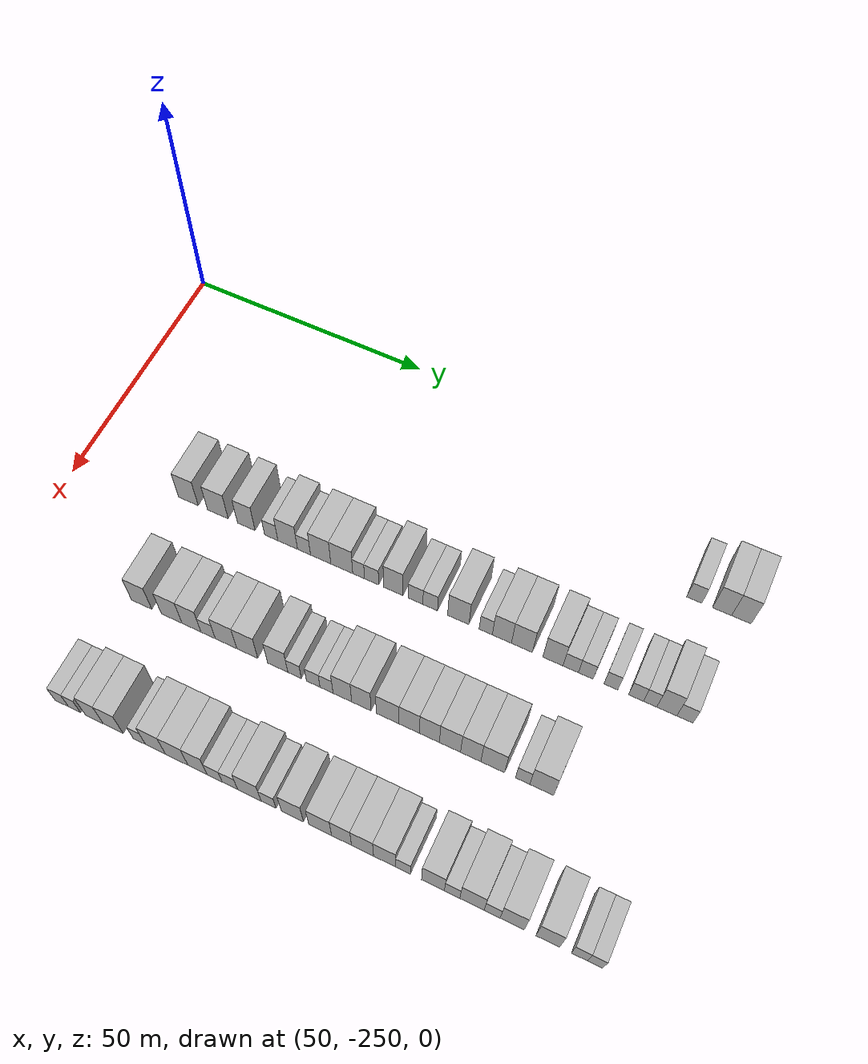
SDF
<sdf version="1.6">
 <world name="default">
  <model name="building_438">
   <static>1</static>
   <pose>69.0000 -133.8585 0 0.000000 0.000000 0.000000</pose>
   <link name="link">
    <pose>0 0 3.00 0 0 0</pose>
    <collision name="collision"><geometry><box><size>10.0000 2.8949 6.0000</size></box></geometry></collision>
    <visual name="visual">
     <cast_shadows>0</cast_shadows>
     <geometry><box><size>10.0000 2.8949 6.0000</size></box></geometry>
     <material>
      <script>
       <uri>model://HANNAS_wall/materials/scripts</uri>
       <uri>model://HANNAS_wall/materials/textures</uri>
       <name>vrc/HANNAS_wall</name>
      </script>
     </material>
    </visual>
   </link>
  </model>
  <model name="building_439">
   <static>1</static>
   <pose>69.0000 -128.6064 0 0.000000 0.000000 0.000000</pose>
   <link name="link">
    <pose>0 0 4.50 0 0 0</pose>
    <collision name="collision"><geometry><box><size>10.0000 3.6094 9.0000</size></box></geometry></collision>
    <visual name="visual">
     <cast_shadows>0</cast_shadows>
     <geometry><box><size>10.0000 3.6094 9.0000</size></box></geometry>
     <material>
      <script>
       <uri>model://HANNAS_wall/materials/scripts</uri>
       <uri>model://HANNAS_wall/materials/textures</uri>
       <name>vrc/HANNAS_wall</name>
      </script>
     </material>
    </visual>
   </link>
  </model>
  <model name="building_440">
   <static>1</static>
   <pose>69.0000 -124.9648 0 0.000000 0.000000 0.000000</pose>
   <link name="link">
    <pose>0 0 4.50 0 0 0</pose>
    <collision name="collision"><geometry><box><size>10.0000 3.6738 9.0000</size></box></geometry></collision>
    <visual name="visual">
     <cast_shadows>0</cast_shadows>
     <geometry><box><size>10.0000 3.6738 9.0000</size></box></geometry>
     <material>
      <script>
       <uri>model://HANNAS_wall/materials/scripts</uri>
       <uri>model://HANNAS_wall/materials/textures</uri>
       <name>vrc/HANNAS_wall</name>
      </script>
     </material>
    </visual>
   </link>
  </model>
  <model name="building_606">
   <static>1</static>
   <pose>91.0000 -226.7103 0 0.000000 0.000000 0.000000</pose>
   <link name="link">
    <pose>0 0 4.50 0 0 0</pose>
    <collision name="collision"><geometry><box><size>10.0000 4.2641 9.0000</size></box></geometry></collision>
    <visual name="visual">
     <cast_shadows>0</cast_shadows>
     <geometry><box><size>10.0000 4.2641 9.0000</size></box></geometry>
     <material>
      <script>
       <uri>model://HANNAS_wall/materials/scripts</uri>
       <uri>model://HANNAS_wall/materials/textures</uri>
       <name>vrc/HANNAS_wall</name>
      </script>
     </material>
    </visual>
   </link>
  </model>
  <model name="building_607">
   <static>1</static>
   <pose>91.0000 -220.3529 0 0.000000 0.000000 0.000000</pose>
   <link name="link">
    <pose>0 0 4.50 0 0 0</pose>
    <collision name="collision"><geometry><box><size>10.0000 4.4506 9.0000</size></box></geometry></collision>
    <visual name="visual">
     <cast_shadows>0</cast_shadows>
     <geometry><box><size>10.0000 4.4506 9.0000</size></box></geometry>
     <material>
      <script>
       <uri>model://HANNAS_wall/materials/scripts</uri>
       <uri>model://HANNAS_wall/materials/textures</uri>
       <name>vrc/HANNAS_wall</name>
      </script>
     </material>
    </visual>
   </link>
  </model>
  <model name="building_608">
   <static>1</static>
   <pose>91.0000 -214.2517 0 0.000000 0.000000 0.000000</pose>
   <link name="link">
    <pose>0 0 4.50 0 0 0</pose>
    <collision name="collision"><geometry><box><size>10.0000 3.7518 9.0000</size></box></geometry></collision>
    <visual name="visual">
     <cast_shadows>0</cast_shadows>
     <geometry><box><size>10.0000 3.7518 9.0000</size></box></geometry>
     <material>
      <script>
       <uri>model://HANNAS_wall/materials/scripts</uri>
       <uri>model://HANNAS_wall/materials/textures</uri>
       <name>vrc/HANNAS_wall</name>
      </script>
     </material>
    </visual>
   </link>
  </model>
  <model name="building_609">
   <static>1</static>
   <pose>91.0000 -208.9661 0 0.000000 0.000000 0.000000</pose>
   <link name="link">
    <pose>0 0 3.00 0 0 0</pose>
    <collision name="collision"><geometry><box><size>10.0000 2.8195 6.0000</size></box></geometry></collision>
    <visual name="visual">
     <cast_shadows>0</cast_shadows>
     <geometry><box><size>10.0000 2.8195 6.0000</size></box></geometry>
     <material>
      <script>
       <uri>model://HANNAS_wall/materials/scripts</uri>
       <uri>model://HANNAS_wall/materials/textures</uri>
       <name>vrc/HANNAS_wall</name>
      </script>
     </material>
    </visual>
   </link>
  </model>
  <model name="building_610">
   <static>1</static>
   <pose>91.0000 -205.5029 0 0.000000 0.000000 0.000000</pose>
   <link name="link">
    <pose>0 0 4.50 0 0 0</pose>
    <collision name="collision"><geometry><box><size>10.0000 4.1069 9.0000</size></box></geometry></collision>
    <visual name="visual">
     <cast_shadows>0</cast_shadows>
     <geometry><box><size>10.0000 4.1069 9.0000</size></box></geometry>
     <material>
      <script>
       <uri>model://HANNAS_wall/materials/scripts</uri>
       <uri>model://HANNAS_wall/materials/textures</uri>
       <name>vrc/HANNAS_wall</name>
      </script>
     </material>
    </visual>
   </link>
  </model>
  <model name="building_611">
   <static>1</static>
   <pose>91.0000 -202.0867 0 0.000000 0.000000 0.000000</pose>
   <link name="link">
    <pose>0 0 3.00 0 0 0</pose>
    <collision name="collision"><geometry><box><size>10.0000 2.7254 6.0000</size></box></geometry></collision>
    <visual name="visual">
     <cast_shadows>0</cast_shadows>
     <geometry><box><size>10.0000 2.7254 6.0000</size></box></geometry>
     <material>
      <script>
       <uri>model://HANNAS_wall/materials/scripts</uri>
       <uri>model://HANNAS_wall/materials/textures</uri>
       <name>vrc/HANNAS_wall</name>
      </script>
     </material>
    </visual>
   </link>
  </model>
  <model name="building_612">
   <static>1</static>
   <pose>91.0000 -198.6227 0 0.000000 0.000000 0.000000</pose>
   <link name="link">
    <pose>0 0 4.50 0 0 0</pose>
    <collision name="collision"><geometry><box><size>10.0000 4.2027 9.0000</size></box></geometry></collision>
    <visual name="visual">
     <cast_shadows>0</cast_shadows>
     <geometry><box><size>10.0000 4.2027 9.0000</size></box></geometry>
     <material>
      <script>
       <uri>model://HANNAS_wall/materials/scripts</uri>
       <uri>model://HANNAS_wall/materials/textures</uri>
       <name>vrc/HANNAS_wall</name>
      </script>
     </material>
    </visual>
   </link>
  </model>
  <model name="building_613">
   <static>1</static>
   <pose>91.0000 -194.2714 0 0.000000 0.000000 0.000000</pose>
   <link name="link">
    <pose>0 0 4.50 0 0 0</pose>
    <collision name="collision"><geometry><box><size>10.0000 4.4998 9.0000</size></box></geometry></collision>
    <visual name="visual">
     <cast_shadows>0</cast_shadows>
     <geometry><box><size>10.0000 4.4998 9.0000</size></box></geometry>
     <material>
      <script>
       <uri>model://HANNAS_wall/materials/scripts</uri>
       <uri>model://HANNAS_wall/materials/textures</uri>
       <name>vrc/HANNAS_wall</name>
      </script>
     </material>
    </visual>
   </link>
  </model>
  <model name="building_614">
   <static>1</static>
   <pose>91.0000 -190.8179 0 0.000000 0.000000 0.000000</pose>
   <link name="link">
    <pose>0 0 3.00 0 0 0</pose>
    <collision name="collision"><geometry><box><size>10.0000 2.4072 6.0000</size></box></geometry></collision>
    <visual name="visual">
     <cast_shadows>0</cast_shadows>
     <geometry><box><size>10.0000 2.4072 6.0000</size></box></geometry>
     <material>
      <script>
       <uri>model://HANNAS_wall/materials/scripts</uri>
       <uri>model://HANNAS_wall/materials/textures</uri>
       <name>vrc/HANNAS_wall</name>
      </script>
     </material>
    </visual>
   </link>
  </model>
  <model name="building_615">
   <static>1</static>
   <pose>91.0000 -188.1732 0 0.000000 0.000000 0.000000</pose>
   <link name="link">
    <pose>0 0 3.00 0 0 0</pose>
    <collision name="collision"><geometry><box><size>10.0000 2.8823 6.0000</size></box></geometry></collision>
    <visual name="visual">
     <cast_shadows>0</cast_shadows>
     <geometry><box><size>10.0000 2.8823 6.0000</size></box></geometry>
     <material>
      <script>
       <uri>model://HANNAS_wall/materials/scripts</uri>
       <uri>model://HANNAS_wall/materials/textures</uri>
       <name>vrc/HANNAS_wall</name>
      </script>
     </material>
    </visual>
   </link>
  </model>
  <model name="building_616">
   <static>1</static>
   <pose>91.0000 -183.7833 0 0.000000 0.000000 0.000000</pose>
   <link name="link">
    <pose>0 0 4.50 0 0 0</pose>
    <collision name="collision"><geometry><box><size>10.0000 3.8976 9.0000</size></box></geometry></collision>
    <visual name="visual">
     <cast_shadows>0</cast_shadows>
     <geometry><box><size>10.0000 3.8976 9.0000</size></box></geometry>
     <material>
      <script>
       <uri>model://HANNAS_wall/materials/scripts</uri>
       <uri>model://HANNAS_wall/materials/textures</uri>
       <name>vrc/HANNAS_wall</name>
      </script>
     </material>
    </visual>
   </link>
  </model>
  <model name="building_617">
   <static>1</static>
   <pose>91.0000 -179.3461 0 0.000000 0.000000 0.000000</pose>
   <link name="link">
    <pose>0 0 3.00 0 0 0</pose>
    <collision name="collision"><geometry><box><size>10.0000 2.9768 6.0000</size></box></geometry></collision>
    <visual name="visual">
     <cast_shadows>0</cast_shadows>
     <geometry><box><size>10.0000 2.9768 6.0000</size></box></geometry>
     <material>
      <script>
       <uri>model://HANNAS_wall/materials/scripts</uri>
       <uri>model://HANNAS_wall/materials/textures</uri>
       <name>vrc/HANNAS_wall</name>
      </script>
     </material>
    </visual>
   </link>
  </model>
  <model name="building_618">
   <static>1</static>
   <pose>91.0000 -176.3973 0 0.000000 0.000000 0.000000</pose>
   <link name="link">
    <pose>0 0 3.00 0 0 0</pose>
    <collision name="collision"><geometry><box><size>10.0000 2.9209 6.0000</size></box></geometry></collision>
    <visual name="visual">
     <cast_shadows>0</cast_shadows>
     <geometry><box><size>10.0000 2.9209 6.0000</size></box></geometry>
     <material>
      <script>
       <uri>model://HANNAS_wall/materials/scripts</uri>
       <uri>model://HANNAS_wall/materials/textures</uri>
       <name>vrc/HANNAS_wall</name>
      </script>
     </material>
    </visual>
   </link>
  </model>
  <model name="building_619">
   <static>1</static>
   <pose>91.0000 -170.8344 0 0.000000 0.000000 0.000000</pose>
   <link name="link">
    <pose>0 0 4.50 0 0 0</pose>
    <collision name="collision"><geometry><box><size>10.0000 4.2049 9.0000</size></box></geometry></collision>
    <visual name="visual">
     <cast_shadows>0</cast_shadows>
     <geometry><box><size>10.0000 4.2049 9.0000</size></box></geometry>
     <material>
      <script>
       <uri>model://HANNAS_wall/materials/scripts</uri>
       <uri>model://HANNAS_wall/materials/textures</uri>
       <name>vrc/HANNAS_wall</name>
      </script>
     </material>
    </visual>
   </link>
  </model>
  <model name="building_620">
   <static>1</static>
   <pose>91.0000 -165.4430 0 0.000000 0.000000 0.000000</pose>
   <link name="link">
    <pose>0 0 3.00 0 0 0</pose>
    <collision name="collision"><geometry><box><size>10.0000 2.5780 6.0000</size></box></geometry></collision>
    <visual name="visual">
     <cast_shadows>0</cast_shadows>
     <geometry><box><size>10.0000 2.5780 6.0000</size></box></geometry>
     <material>
      <script>
       <uri>model://HANNAS_wall/materials/scripts</uri>
       <uri>model://HANNAS_wall/materials/textures</uri>
       <name>vrc/HANNAS_wall</name>
      </script>
     </material>
    </visual>
   </link>
  </model>
  <model name="building_621">
   <static>1</static>
   <pose>91.0000 -162.2992 0 0.000000 0.000000 0.000000</pose>
   <link name="link">
    <pose>0 0 4.50 0 0 0</pose>
    <collision name="collision"><geometry><box><size>10.0000 3.7095 9.0000</size></box></geometry></collision>
    <visual name="visual">
     <cast_shadows>0</cast_shadows>
     <geometry><box><size>10.0000 3.7095 9.0000</size></box></geometry>
     <material>
      <script>
       <uri>model://HANNAS_wall/materials/scripts</uri>
       <uri>model://HANNAS_wall/materials/textures</uri>
       <name>vrc/HANNAS_wall</name>
      </script>
     </material>
    </visual>
   </link>
  </model>
  <model name="building_622">
   <static>1</static>
   <pose>91.0000 -158.4256 0 0.000000 0.000000 0.000000</pose>
   <link name="link">
    <pose>0 0 4.50 0 0 0</pose>
    <collision name="collision"><geometry><box><size>10.0000 4.0377 9.0000</size></box></geometry></collision>
    <visual name="visual">
     <cast_shadows>0</cast_shadows>
     <geometry><box><size>10.0000 4.0377 9.0000</size></box></geometry>
     <material>
      <script>
       <uri>model://HANNAS_wall/materials/scripts</uri>
       <uri>model://HANNAS_wall/materials/textures</uri>
       <name>vrc/HANNAS_wall</name>
      </script>
     </material>
    </visual>
   </link>
  </model>
  <model name="building_623">
   <static>1</static>
   <pose>91.0000 -152.4929 0 0.000000 0.000000 0.000000</pose>
   <link name="link">
    <pose>0 0 4.50 0 0 0</pose>
    <collision name="collision"><geometry><box><size>10.0000 3.8276 9.0000</size></box></geometry></collision>
    <visual name="visual">
     <cast_shadows>0</cast_shadows>
     <geometry><box><size>10.0000 3.8276 9.0000</size></box></geometry>
     <material>
      <script>
       <uri>model://HANNAS_wall/materials/scripts</uri>
       <uri>model://HANNAS_wall/materials/textures</uri>
       <name>vrc/HANNAS_wall</name>
      </script>
     </material>
    </visual>
   </link>
  </model>
  <model name="building_624">
   <static>1</static>
   <pose>91.0000 -149.1137 0 0.000000 0.000000 0.000000</pose>
   <link name="link">
    <pose>0 0 3.00 0 0 0</pose>
    <collision name="collision"><geometry><box><size>10.0000 2.9308 6.0000</size></box></geometry></collision>
    <visual name="visual">
     <cast_shadows>0</cast_shadows>
     <geometry><box><size>10.0000 2.9308 6.0000</size></box></geometry>
     <material>
      <script>
       <uri>model://HANNAS_wall/materials/scripts</uri>
       <uri>model://HANNAS_wall/materials/textures</uri>
       <name>vrc/HANNAS_wall</name>
      </script>
     </material>
    </visual>
   </link>
  </model>
  <model name="building_625">
   <static>1</static>
   <pose>91.0000 -146.2509 0 0.000000 0.000000 0.000000</pose>
   <link name="link">
    <pose>0 0 3.00 0 0 0</pose>
    <collision name="collision"><geometry><box><size>10.0000 2.7950 6.0000</size></box></geometry></collision>
    <visual name="visual">
     <cast_shadows>0</cast_shadows>
     <geometry><box><size>10.0000 2.7950 6.0000</size></box></geometry>
     <material>
      <script>
       <uri>model://HANNAS_wall/materials/scripts</uri>
       <uri>model://HANNAS_wall/materials/textures</uri>
       <name>vrc/HANNAS_wall</name>
      </script>
     </material>
    </visual>
   </link>
  </model>
  <model name="building_626">
   <static>1</static>
   <pose>91.0000 -141.5551 0 0.000000 0.000000 0.000000</pose>
   <link name="link">
    <pose>0 0 3.00 0 0 0</pose>
    <collision name="collision"><geometry><box><size>10.0000 2.5967 6.0000</size></box></geometry></collision>
    <visual name="visual">
     <cast_shadows>0</cast_shadows>
     <geometry><box><size>10.0000 2.5967 6.0000</size></box></geometry>
     <material>
      <script>
       <uri>model://HANNAS_wall/materials/scripts</uri>
       <uri>model://HANNAS_wall/materials/textures</uri>
       <name>vrc/HANNAS_wall</name>
      </script>
     </material>
    </visual>
   </link>
  </model>
  <model name="building_627">
   <static>1</static>
   <pose>91.0000 -136.8824 0 0.000000 0.000000 0.000000</pose>
   <link name="link">
    <pose>0 0 3.00 0 0 0</pose>
    <collision name="collision"><geometry><box><size>10.0000 2.7486 6.0000</size></box></geometry></collision>
    <visual name="visual">
     <cast_shadows>0</cast_shadows>
     <geometry><box><size>10.0000 2.7486 6.0000</size></box></geometry>
     <material>
      <script>
       <uri>model://HANNAS_wall/materials/scripts</uri>
       <uri>model://HANNAS_wall/materials/textures</uri>
       <name>vrc/HANNAS_wall</name>
      </script>
     </material>
    </visual>
   </link>
  </model>
  <model name="building_628">
   <static>1</static>
   <pose>91.0000 -134.2813 0 0.000000 0.000000 0.000000</pose>
   <link name="link">
    <pose>0 0 3.00 0 0 0</pose>
    <collision name="collision"><geometry><box><size>10.0000 2.4536 6.0000</size></box></geometry></collision>
    <visual name="visual">
     <cast_shadows>0</cast_shadows>
     <geometry><box><size>10.0000 2.4536 6.0000</size></box></geometry>
     <material>
      <script>
       <uri>model://HANNAS_wall/materials/scripts</uri>
       <uri>model://HANNAS_wall/materials/textures</uri>
       <name>vrc/HANNAS_wall</name>
      </script>
     </material>
    </visual>
   </link>
  </model>
  <model name="building_629">
   <static>1</static>
   <pose>91.0000 -131.2243 0 0.000000 0.000000 0.000000</pose>
   <link name="link">
    <pose>0 0 4.50 0 0 0</pose>
    <collision name="collision"><geometry><box><size>10.0000 3.6606 9.0000</size></box></geometry></collision>
    <visual name="visual">
     <cast_shadows>0</cast_shadows>
     <geometry><box><size>10.0000 3.6606 9.0000</size></box></geometry>
     <material>
      <script>
       <uri>model://HANNAS_wall/materials/scripts</uri>
       <uri>model://HANNAS_wall/materials/textures</uri>
       <name>vrc/HANNAS_wall</name>
      </script>
     </material>
    </visual>
   </link>
  </model>
  <model name="building_630">
   <static>1</static>
   <pose>91.0000 -127.9070 0 0.000000 0.000000 0.000000</pose>
   <link name="link">
    <pose>0 0 3.00 0 0 0</pose>
    <collision name="collision"><geometry><box><size>10.0000 2.9740 6.0000</size></box></geometry></collision>
    <visual name="visual">
     <cast_shadows>0</cast_shadows>
     <geometry><box><size>10.0000 2.9740 6.0000</size></box></geometry>
     <material>
      <script>
       <uri>model://HANNAS_wall/materials/scripts</uri>
       <uri>model://HANNAS_wall/materials/textures</uri>
       <name>vrc/HANNAS_wall</name>
      </script>
     </material>
    </visual>
   </link>
  </model>
  <model name="building_789">
   <static>1</static>
   <pose>113.0000 -223.6471 0 0.000000 0.000000 0.000000</pose>
   <link name="link">
    <pose>0 0 4.50 0 0 0</pose>
    <collision name="collision"><geometry><box><size>10.0000 4.2620 9.0000</size></box></geometry></collision>
    <visual name="visual">
     <cast_shadows>0</cast_shadows>
     <geometry><box><size>10.0000 4.2620 9.0000</size></box></geometry>
     <material>
      <script>
       <uri>model://HANNAS_wall/materials/scripts</uri>
       <uri>model://HANNAS_wall/materials/textures</uri>
       <name>vrc/HANNAS_wall</name>
      </script>
     </material>
    </visual>
   </link>
  </model>
  <model name="building_790">
   <static>1</static>
   <pose>113.0000 -217.3601 0 0.000000 0.000000 0.000000</pose>
   <link name="link">
    <pose>0 0 4.50 0 0 0</pose>
    <collision name="collision"><geometry><box><size>10.0000 4.3120 9.0000</size></box></geometry></collision>
    <visual name="visual">
     <cast_shadows>0</cast_shadows>
     <geometry><box><size>10.0000 4.3120 9.0000</size></box></geometry>
     <material>
      <script>
       <uri>model://HANNAS_wall/materials/scripts</uri>
       <uri>model://HANNAS_wall/materials/textures</uri>
       <name>vrc/HANNAS_wall</name>
      </script>
     </material>
    </visual>
   </link>
  </model>
  <model name="building_791">
   <static>1</static>
   <pose>113.0000 -213.2499 0 0.000000 0.000000 0.000000</pose>
   <link name="link">
    <pose>0 0 4.50 0 0 0</pose>
    <collision name="collision"><geometry><box><size>10.0000 3.9085 9.0000</size></box></geometry></collision>
    <visual name="visual">
     <cast_shadows>0</cast_shadows>
     <geometry><box><size>10.0000 3.9085 9.0000</size></box></geometry>
     <material>
      <script>
       <uri>model://HANNAS_wall/materials/scripts</uri>
       <uri>model://HANNAS_wall/materials/textures</uri>
       <name>vrc/HANNAS_wall</name>
      </script>
     </material>
    </visual>
   </link>
  </model>
  <model name="building_792">
   <static>1</static>
   <pose>113.0000 -209.8313 0 0.000000 0.000000 0.000000</pose>
   <link name="link">
    <pose>0 0 3.00 0 0 0</pose>
    <collision name="collision"><geometry><box><size>10.0000 2.9286 6.0000</size></box></geometry></collision>
    <visual name="visual">
     <cast_shadows>0</cast_shadows>
     <geometry><box><size>10.0000 2.9286 6.0000</size></box></geometry>
     <material>
      <script>
       <uri>model://HANNAS_wall/materials/scripts</uri>
       <uri>model://HANNAS_wall/materials/textures</uri>
       <name>vrc/HANNAS_wall</name>
      </script>
     </material>
    </visual>
   </link>
  </model>
  <model name="building_793">
   <static>1</static>
   <pose>113.0000 -206.1791 0 0.000000 0.000000 0.000000</pose>
   <link name="link">
    <pose>0 0 4.50 0 0 0</pose>
    <collision name="collision"><geometry><box><size>10.0000 4.3758 9.0000</size></box></geometry></collision>
    <visual name="visual">
     <cast_shadows>0</cast_shadows>
     <geometry><box><size>10.0000 4.3758 9.0000</size></box></geometry>
     <material>
      <script>
       <uri>model://HANNAS_wall/materials/scripts</uri>
       <uri>model://HANNAS_wall/materials/textures</uri>
       <name>vrc/HANNAS_wall</name>
      </script>
     </material>
    </visual>
   </link>
  </model>
  <model name="building_794">
   <static>1</static>
   <pose>113.0000 -201.8778 0 0.000000 0.000000 0.000000</pose>
   <link name="link">
    <pose>0 0 4.50 0 0 0</pose>
    <collision name="collision"><geometry><box><size>10.0000 4.2267 9.0000</size></box></geometry></collision>
    <visual name="visual">
     <cast_shadows>0</cast_shadows>
     <geometry><box><size>10.0000 4.2267 9.0000</size></box></geometry>
     <material>
      <script>
       <uri>model://HANNAS_wall/materials/scripts</uri>
       <uri>model://HANNAS_wall/materials/textures</uri>
       <name>vrc/HANNAS_wall</name>
      </script>
     </material>
    </visual>
   </link>
  </model>
  <model name="building_795">
   <static>1</static>
   <pose>113.0000 -195.7475 0 0.000000 0.000000 0.000000</pose>
   <link name="link">
    <pose>0 0 4.50 0 0 0</pose>
    <collision name="collision"><geometry><box><size>10.0000 4.0339 9.0000</size></box></geometry></collision>
    <visual name="visual">
     <cast_shadows>0</cast_shadows>
     <geometry><box><size>10.0000 4.0339 9.0000</size></box></geometry>
     <material>
      <script>
       <uri>model://HANNAS_wall/materials/scripts</uri>
       <uri>model://HANNAS_wall/materials/textures</uri>
       <name>vrc/HANNAS_wall</name>
      </script>
     </material>
    </visual>
   </link>
  </model>
  <model name="building_796">
   <static>1</static>
   <pose>113.0000 -192.3876 0 0.000000 0.000000 0.000000</pose>
   <link name="link">
    <pose>0 0 3.00 0 0 0</pose>
    <collision name="collision"><geometry><box><size>10.0000 2.6858 6.0000</size></box></geometry></collision>
    <visual name="visual">
     <cast_shadows>0</cast_shadows>
     <geometry><box><size>10.0000 2.6858 6.0000</size></box></geometry>
     <material>
      <script>
       <uri>model://HANNAS_wall/materials/scripts</uri>
       <uri>model://HANNAS_wall/materials/textures</uri>
       <name>vrc/HANNAS_wall</name>
      </script>
     </material>
    </visual>
   </link>
  </model>
  <model name="building_797">
   <static>1</static>
   <pose>113.0000 -188.7047 0 0.000000 0.000000 0.000000</pose>
   <link name="link">
    <pose>0 0 3.00 0 0 0</pose>
    <collision name="collision"><geometry><box><size>10.0000 2.6800 6.0000</size></box></geometry></collision>
    <visual name="visual">
     <cast_shadows>0</cast_shadows>
     <geometry><box><size>10.0000 2.6800 6.0000</size></box></geometry>
     <material>
      <script>
       <uri>model://HANNAS_wall/materials/scripts</uri>
       <uri>model://HANNAS_wall/materials/textures</uri>
       <name>vrc/HANNAS_wall</name>
      </script>
     </material>
    </visual>
   </link>
  </model>
  <model name="building_798">
   <static>1</static>
   <pose>113.0000 -186.0913 0 0.000000 0.000000 0.000000</pose>
   <link name="link">
    <pose>0 0 3.00 0 0 0</pose>
    <collision name="collision"><geometry><box><size>10.0000 2.5468 6.0000</size></box></geometry></collision>
    <visual name="visual">
     <cast_shadows>0</cast_shadows>
     <geometry><box><size>10.0000 2.5468 6.0000</size></box></geometry>
     <material>
      <script>
       <uri>model://HANNAS_wall/materials/scripts</uri>
       <uri>model://HANNAS_wall/materials/textures</uri>
       <name>vrc/HANNAS_wall</name>
      </script>
     </material>
    </visual>
   </link>
  </model>
  <model name="building_799">
   <static>1</static>
   <pose>113.0000 -182.9960 0 0.000000 0.000000 0.000000</pose>
   <link name="link">
    <pose>0 0 4.50 0 0 0</pose>
    <collision name="collision"><geometry><box><size>10.0000 3.6438 9.0000</size></box></geometry></collision>
    <visual name="visual">
     <cast_shadows>0</cast_shadows>
     <geometry><box><size>10.0000 3.6438 9.0000</size></box></geometry>
     <material>
      <script>
       <uri>model://HANNAS_wall/materials/scripts</uri>
       <uri>model://HANNAS_wall/materials/textures</uri>
       <name>vrc/HANNAS_wall</name>
      </script>
     </material>
    </visual>
   </link>
  </model>
  <model name="building_800">
   <static>1</static>
   <pose>113.0000 -179.2990 0 0.000000 0.000000 0.000000</pose>
   <link name="link">
    <pose>0 0 4.50 0 0 0</pose>
    <collision name="collision"><geometry><box><size>10.0000 3.7501 9.0000</size></box></geometry></collision>
    <visual name="visual">
     <cast_shadows>0</cast_shadows>
     <geometry><box><size>10.0000 3.7501 9.0000</size></box></geometry>
     <material>
      <script>
       <uri>model://HANNAS_wall/materials/scripts</uri>
       <uri>model://HANNAS_wall/materials/textures</uri>
       <name>vrc/HANNAS_wall</name>
      </script>
     </material>
    </visual>
   </link>
  </model>
  <model name="building_801">
   <static>1</static>
   <pose>113.0000 -174.2429 0 0.000000 0.000000 0.000000</pose>
   <link name="link">
    <pose>0 0 4.50 0 0 0</pose>
    <collision name="collision"><geometry><box><size>10.0000 4.3621 9.0000</size></box></geometry></collision>
    <visual name="visual">
     <cast_shadows>0</cast_shadows>
     <geometry><box><size>10.0000 4.3621 9.0000</size></box></geometry>
     <material>
      <script>
       <uri>model://HANNAS_wall/materials/scripts</uri>
       <uri>model://HANNAS_wall/materials/textures</uri>
       <name>vrc/HANNAS_wall</name>
      </script>
     </material>
    </visual>
   </link>
  </model>
  <model name="building_802">
   <static>1</static>
   <pose>113.0000 -170.1330 0 0.000000 0.000000 0.000000</pose>
   <link name="link">
    <pose>0 0 4.50 0 0 0</pose>
    <collision name="collision"><geometry><box><size>10.0000 3.8577 9.0000</size></box></geometry></collision>
    <visual name="visual">
     <cast_shadows>0</cast_shadows>
     <geometry><box><size>10.0000 3.8577 9.0000</size></box></geometry>
     <material>
      <script>
       <uri>model://HANNAS_wall/materials/scripts</uri>
       <uri>model://HANNAS_wall/materials/textures</uri>
       <name>vrc/HANNAS_wall</name>
      </script>
     </material>
    </visual>
   </link>
  </model>
  <model name="building_803">
   <static>1</static>
   <pose>113.0000 -166.3107 0 0.000000 0.000000 0.000000</pose>
   <link name="link">
    <pose>0 0 4.50 0 0 0</pose>
    <collision name="collision"><geometry><box><size>10.0000 3.7869 9.0000</size></box></geometry></collision>
    <visual name="visual">
     <cast_shadows>0</cast_shadows>
     <geometry><box><size>10.0000 3.7869 9.0000</size></box></geometry>
     <material>
      <script>
       <uri>model://HANNAS_wall/materials/scripts</uri>
       <uri>model://HANNAS_wall/materials/textures</uri>
       <name>vrc/HANNAS_wall</name>
      </script>
     </material>
    </visual>
   </link>
  </model>
  <model name="building_804">
   <static>1</static>
   <pose>113.0000 -162.4326 0 0.000000 0.000000 0.000000</pose>
   <link name="link">
    <pose>0 0 4.50 0 0 0</pose>
    <collision name="collision"><geometry><box><size>10.0000 3.9693 9.0000</size></box></geometry></collision>
    <visual name="visual">
     <cast_shadows>0</cast_shadows>
     <geometry><box><size>10.0000 3.9693 9.0000</size></box></geometry>
     <material>
      <script>
       <uri>model://HANNAS_wall/materials/scripts</uri>
       <uri>model://HANNAS_wall/materials/textures</uri>
       <name>vrc/HANNAS_wall</name>
      </script>
     </material>
    </visual>
   </link>
  </model>
  <model name="building_805">
   <static>1</static>
   <pose>113.0000 -158.5557 0 0.000000 0.000000 0.000000</pose>
   <link name="link">
    <pose>0 0 4.50 0 0 0</pose>
    <collision name="collision"><geometry><box><size>10.0000 3.7847 9.0000</size></box></geometry></collision>
    <visual name="visual">
     <cast_shadows>0</cast_shadows>
     <geometry><box><size>10.0000 3.7847 9.0000</size></box></geometry>
     <material>
      <script>
       <uri>model://HANNAS_wall/materials/scripts</uri>
       <uri>model://HANNAS_wall/materials/textures</uri>
       <name>vrc/HANNAS_wall</name>
      </script>
     </material>
    </visual>
   </link>
  </model>
  <model name="building_806">
   <static>1</static>
   <pose>113.0000 -154.4710 0 0.000000 0.000000 0.000000</pose>
   <link name="link">
    <pose>0 0 4.50 0 0 0</pose>
    <collision name="collision"><geometry><box><size>10.0000 4.3846 9.0000</size></box></geometry></collision>
    <visual name="visual">
     <cast_shadows>0</cast_shadows>
     <geometry><box><size>10.0000 4.3846 9.0000</size></box></geometry>
     <material>
      <script>
       <uri>model://HANNAS_wall/materials/scripts</uri>
       <uri>model://HANNAS_wall/materials/textures</uri>
       <name>vrc/HANNAS_wall</name>
      </script>
     </material>
    </visual>
   </link>
  </model>
  <model name="building_807">
   <static>1</static>
   <pose>113.0000 -148.9691 0 0.000000 0.000000 0.000000</pose>
   <link name="link">
    <pose>0 0 3.00 0 0 0</pose>
    <collision name="collision"><geometry><box><size>10.0000 2.6191 6.0000</size></box></geometry></collision>
    <visual name="visual">
     <cast_shadows>0</cast_shadows>
     <geometry><box><size>10.0000 2.6191 6.0000</size></box></geometry>
     <material>
      <script>
       <uri>model://HANNAS_wall/materials/scripts</uri>
       <uri>model://HANNAS_wall/materials/textures</uri>
       <name>vrc/HANNAS_wall</name>
      </script>
     </material>
    </visual>
   </link>
  </model>
  <model name="building_808">
   <static>1</static>
   <pose>113.0000 -145.4999 0 0.000000 0.000000 0.000000</pose>
   <link name="link">
    <pose>0 0 4.50 0 0 0</pose>
    <collision name="collision"><geometry><box><size>10.0000 4.3193 9.0000</size></box></geometry></collision>
    <visual name="visual">
     <cast_shadows>0</cast_shadows>
     <geometry><box><size>10.0000 4.3193 9.0000</size></box></geometry>
     <material>
      <script>
       <uri>model://HANNAS_wall/materials/scripts</uri>
       <uri>model://HANNAS_wall/materials/textures</uri>
       <name>vrc/HANNAS_wall</name>
      </script>
     </material>
    </visual>
   </link>
  </model>
  <model name="building_966">
   <static>1</static>
   <pose>135.0000 -226.4231 0 0.000000 0.000000 0.000000</pose>
   <link name="link">
    <pose>0 0 3.00 0 0 0</pose>
    <collision name="collision"><geometry><box><size>10.0000 2.8357 6.0000</size></box></geometry></collision>
    <visual name="visual">
     <cast_shadows>0</cast_shadows>
     <geometry><box><size>10.0000 2.8357 6.0000</size></box></geometry>
     <material>
      <script>
       <uri>model://HANNAS_wall/materials/scripts</uri>
       <uri>model://HANNAS_wall/materials/textures</uri>
       <name>vrc/HANNAS_wall</name>
      </script>
     </material>
    </visual>
   </link>
  </model>
  <model name="building_967">
   <static>1</static>
   <pose>135.0000 -223.7912 0 0.000000 0.000000 0.000000</pose>
   <link name="link">
    <pose>0 0 3.00 0 0 0</pose>
    <collision name="collision"><geometry><box><size>10.0000 2.4281 6.0000</size></box></geometry></collision>
    <visual name="visual">
     <cast_shadows>0</cast_shadows>
     <geometry><box><size>10.0000 2.4281 6.0000</size></box></geometry>
     <material>
      <script>
       <uri>model://HANNAS_wall/materials/scripts</uri>
       <uri>model://HANNAS_wall/materials/textures</uri>
       <name>vrc/HANNAS_wall</name>
      </script>
     </material>
    </visual>
   </link>
  </model>
  <model name="building_968">
   <static>1</static>
   <pose>135.0000 -219.7592 0 0.000000 0.000000 0.000000</pose>
   <link name="link">
    <pose>0 0 4.50 0 0 0</pose>
    <collision name="collision"><geometry><box><size>10.0000 3.6359 9.0000</size></box></geometry></collision>
    <visual name="visual">
     <cast_shadows>0</cast_shadows>
     <geometry><box><size>10.0000 3.6359 9.0000</size></box></geometry>
     <material>
      <script>
       <uri>model://HANNAS_wall/materials/scripts</uri>
       <uri>model://HANNAS_wall/materials/textures</uri>
       <name>vrc/HANNAS_wall</name>
      </script>
     </material>
    </visual>
   </link>
  </model>
  <model name="building_969">
   <static>1</static>
   <pose>135.0000 -215.9546 0 0.000000 0.000000 0.000000</pose>
   <link name="link">
    <pose>0 0 4.50 0 0 0</pose>
    <collision name="collision"><geometry><box><size>10.0000 3.9732 9.0000</size></box></geometry></collision>
    <visual name="visual">
     <cast_shadows>0</cast_shadows>
     <geometry><box><size>10.0000 3.9732 9.0000</size></box></geometry>
     <material>
      <script>
       <uri>model://HANNAS_wall/materials/scripts</uri>
       <uri>model://HANNAS_wall/materials/textures</uri>
       <name>vrc/HANNAS_wall</name>
      </script>
     </material>
    </visual>
   </link>
  </model>
  <model name="building_970">
   <static>1</static>
   <pose>135.0000 -210.7429 0 0.000000 0.000000 0.000000</pose>
   <link name="link">
    <pose>0 0 3.00 0 0 0</pose>
    <collision name="collision"><geometry><box><size>10.0000 2.4503 6.0000</size></box></geometry></collision>
    <visual name="visual">
     <cast_shadows>0</cast_shadows>
     <geometry><box><size>10.0000 2.4503 6.0000</size></box></geometry>
     <material>
      <script>
       <uri>model://HANNAS_wall/materials/scripts</uri>
       <uri>model://HANNAS_wall/materials/textures</uri>
       <name>vrc/HANNAS_wall</name>
      </script>
     </material>
    </visual>
   </link>
  </model>
  <model name="building_971">
   <static>1</static>
   <pose>135.0000 -207.5293 0 0.000000 0.000000 0.000000</pose>
   <link name="link">
    <pose>0 0 4.50 0 0 0</pose>
    <collision name="collision"><geometry><box><size>10.0000 3.9769 9.0000</size></box></geometry></collision>
    <visual name="visual">
     <cast_shadows>0</cast_shadows>
     <geometry><box><size>10.0000 3.9769 9.0000</size></box></geometry>
     <material>
      <script>
       <uri>model://HANNAS_wall/materials/scripts</uri>
       <uri>model://HANNAS_wall/materials/textures</uri>
       <name>vrc/HANNAS_wall</name>
      </script>
     </material>
    </visual>
   </link>
  </model>
  <model name="building_972">
   <static>1</static>
   <pose>135.0000 -203.3373 0 0.000000 0.000000 0.000000</pose>
   <link name="link">
    <pose>0 0 4.50 0 0 0</pose>
    <collision name="collision"><geometry><box><size>10.0000 4.4072 9.0000</size></box></geometry></collision>
    <visual name="visual">
     <cast_shadows>0</cast_shadows>
     <geometry><box><size>10.0000 4.4072 9.0000</size></box></geometry>
     <material>
      <script>
       <uri>model://HANNAS_wall/materials/scripts</uri>
       <uri>model://HANNAS_wall/materials/textures</uri>
       <name>vrc/HANNAS_wall</name>
      </script>
     </material>
    </visual>
   </link>
  </model>
  <model name="building_973">
   <static>1</static>
   <pose>135.0000 -199.2504 0 0.000000 0.000000 0.000000</pose>
   <link name="link">
    <pose>0 0 4.50 0 0 0</pose>
    <collision name="collision"><geometry><box><size>10.0000 3.7667 9.0000</size></box></geometry></collision>
    <visual name="visual">
     <cast_shadows>0</cast_shadows>
     <geometry><box><size>10.0000 3.7667 9.0000</size></box></geometry>
     <material>
      <script>
       <uri>model://HANNAS_wall/materials/scripts</uri>
       <uri>model://HANNAS_wall/materials/textures</uri>
       <name>vrc/HANNAS_wall</name>
      </script>
     </material>
    </visual>
   </link>
  </model>
  <model name="building_974">
   <static>1</static>
   <pose>135.0000 -195.9325 0 0.000000 0.000000 0.000000</pose>
   <link name="link">
    <pose>0 0 3.00 0 0 0</pose>
    <collision name="collision"><geometry><box><size>10.0000 2.8690 6.0000</size></box></geometry></collision>
    <visual name="visual">
     <cast_shadows>0</cast_shadows>
     <geometry><box><size>10.0000 2.8690 6.0000</size></box></geometry>
     <material>
      <script>
       <uri>model://HANNAS_wall/materials/scripts</uri>
       <uri>model://HANNAS_wall/materials/textures</uri>
       <name>vrc/HANNAS_wall</name>
      </script>
     </material>
    </visual>
   </link>
  </model>
  <model name="building_975">
   <static>1</static>
   <pose>135.0000 -193.0027 0 0.000000 0.000000 0.000000</pose>
   <link name="link">
    <pose>0 0 3.00 0 0 0</pose>
    <collision name="collision"><geometry><box><size>10.0000 2.9906 6.0000</size></box></geometry></collision>
    <visual name="visual">
     <cast_shadows>0</cast_shadows>
     <geometry><box><size>10.0000 2.9906 6.0000</size></box></geometry>
     <material>
      <script>
       <uri>model://HANNAS_wall/materials/scripts</uri>
       <uri>model://HANNAS_wall/materials/textures</uri>
       <name>vrc/HANNAS_wall</name>
      </script>
     </material>
    </visual>
   </link>
  </model>
  <model name="building_976">
   <static>1</static>
   <pose>135.0000 -189.2726 0 0.000000 0.000000 0.000000</pose>
   <link name="link">
    <pose>0 0 4.50 0 0 0</pose>
    <collision name="collision"><geometry><box><size>10.0000 4.4696 9.0000</size></box></geometry></collision>
    <visual name="visual">
     <cast_shadows>0</cast_shadows>
     <geometry><box><size>10.0000 4.4696 9.0000</size></box></geometry>
     <material>
      <script>
       <uri>model://HANNAS_wall/materials/scripts</uri>
       <uri>model://HANNAS_wall/materials/textures</uri>
       <name>vrc/HANNAS_wall</name>
      </script>
     </material>
    </visual>
   </link>
  </model>
  <model name="building_977">
   <static>1</static>
   <pose>135.0000 -185.6273 0 0.000000 0.000000 0.000000</pose>
   <link name="link">
    <pose>0 0 3.00 0 0 0</pose>
    <collision name="collision"><geometry><box><size>10.0000 2.8210 6.0000</size></box></geometry></collision>
    <visual name="visual">
     <cast_shadows>0</cast_shadows>
     <geometry><box><size>10.0000 2.8210 6.0000</size></box></geometry>
     <material>
      <script>
       <uri>model://HANNAS_wall/materials/scripts</uri>
       <uri>model://HANNAS_wall/materials/textures</uri>
       <name>vrc/HANNAS_wall</name>
      </script>
     </material>
    </visual>
   </link>
  </model>
  <model name="building_978">
   <static>1</static>
   <pose>135.0000 -181.1375 0 0.000000 0.000000 0.000000</pose>
   <link name="link">
    <pose>0 0 4.50 0 0 0</pose>
    <collision name="collision"><geometry><box><size>10.0000 4.1586 9.0000</size></box></geometry></collision>
    <visual name="visual">
     <cast_shadows>0</cast_shadows>
     <geometry><box><size>10.0000 4.1586 9.0000</size></box></geometry>
     <material>
      <script>
       <uri>model://HANNAS_wall/materials/scripts</uri>
       <uri>model://HANNAS_wall/materials/textures</uri>
       <name>vrc/HANNAS_wall</name>
      </script>
     </material>
    </visual>
   </link>
  </model>
  <model name="building_979">
   <static>1</static>
   <pose>135.0000 -175.9371 0 0.000000 0.000000 0.000000</pose>
   <link name="link">
    <pose>0 0 4.50 0 0 0</pose>
    <collision name="collision"><geometry><box><size>10.0000 4.2423 9.0000</size></box></geometry></collision>
    <visual name="visual">
     <cast_shadows>0</cast_shadows>
     <geometry><box><size>10.0000 4.2423 9.0000</size></box></geometry>
     <material>
      <script>
       <uri>model://HANNAS_wall/materials/scripts</uri>
       <uri>model://HANNAS_wall/materials/textures</uri>
       <name>vrc/HANNAS_wall</name>
      </script>
     </material>
    </visual>
   </link>
  </model>
  <model name="building_980">
   <static>1</static>
   <pose>135.0000 -171.9845 0 0.000000 0.000000 0.000000</pose>
   <link name="link">
    <pose>0 0 4.50 0 0 0</pose>
    <collision name="collision"><geometry><box><size>10.0000 3.6629 9.0000</size></box></geometry></collision>
    <visual name="visual">
     <cast_shadows>0</cast_shadows>
     <geometry><box><size>10.0000 3.6629 9.0000</size></box></geometry>
     <material>
      <script>
       <uri>model://HANNAS_wall/materials/scripts</uri>
       <uri>model://HANNAS_wall/materials/textures</uri>
       <name>vrc/HANNAS_wall</name>
      </script>
     </material>
    </visual>
   </link>
  </model>
  <model name="building_981">
   <static>1</static>
   <pose>135.0000 -168.1389 0 0.000000 0.000000 0.000000</pose>
   <link name="link">
    <pose>0 0 4.50 0 0 0</pose>
    <collision name="collision"><geometry><box><size>10.0000 4.0282 9.0000</size></box></geometry></collision>
    <visual name="visual">
     <cast_shadows>0</cast_shadows>
     <geometry><box><size>10.0000 4.0282 9.0000</size></box></geometry>
     <material>
      <script>
       <uri>model://HANNAS_wall/materials/scripts</uri>
       <uri>model://HANNAS_wall/materials/textures</uri>
       <name>vrc/HANNAS_wall</name>
      </script>
     </material>
    </visual>
   </link>
  </model>
  <model name="building_982">
   <static>1</static>
   <pose>135.0000 -164.1233 0 0.000000 0.000000 0.000000</pose>
   <link name="link">
    <pose>0 0 4.50 0 0 0</pose>
    <collision name="collision"><geometry><box><size>10.0000 4.0031 9.0000</size></box></geometry></collision>
    <visual name="visual">
     <cast_shadows>0</cast_shadows>
     <geometry><box><size>10.0000 4.0031 9.0000</size></box></geometry>
     <material>
      <script>
       <uri>model://HANNAS_wall/materials/scripts</uri>
       <uri>model://HANNAS_wall/materials/textures</uri>
       <name>vrc/HANNAS_wall</name>
      </script>
     </material>
    </visual>
   </link>
  </model>
  <model name="building_983">
   <static>1</static>
   <pose>135.0000 -160.7928 0 0.000000 0.000000 0.000000</pose>
   <link name="link">
    <pose>0 0 3.00 0 0 0</pose>
    <collision name="collision"><geometry><box><size>10.0000 2.6579 6.0000</size></box></geometry></collision>
    <visual name="visual">
     <cast_shadows>0</cast_shadows>
     <geometry><box><size>10.0000 2.6579 6.0000</size></box></geometry>
     <material>
      <script>
       <uri>model://HANNAS_wall/materials/scripts</uri>
       <uri>model://HANNAS_wall/materials/textures</uri>
       <name>vrc/HANNAS_wall</name>
      </script>
     </material>
    </visual>
   </link>
  </model>
  <model name="building_984">
   <static>1</static>
   <pose>135.0000 -155.4280 0 0.000000 0.000000 0.000000</pose>
   <link name="link">
    <pose>0 0 4.50 0 0 0</pose>
    <collision name="collision"><geometry><box><size>10.0000 4.0715 9.0000</size></box></geometry></collision>
    <visual name="visual">
     <cast_shadows>0</cast_shadows>
     <geometry><box><size>10.0000 4.0715 9.0000</size></box></geometry>
     <material>
      <script>
       <uri>model://HANNAS_wall/materials/scripts</uri>
       <uri>model://HANNAS_wall/materials/textures</uri>
       <name>vrc/HANNAS_wall</name>
      </script>
     </material>
    </visual>
   </link>
  </model>
  <model name="building_985">
   <static>1</static>
   <pose>135.0000 -152.0233 0 0.000000 0.000000 0.000000</pose>
   <link name="link">
    <pose>0 0 3.00 0 0 0</pose>
    <collision name="collision"><geometry><box><size>10.0000 2.7380 6.0000</size></box></geometry></collision>
    <visual name="visual">
     <cast_shadows>0</cast_shadows>
     <geometry><box><size>10.0000 2.7380 6.0000</size></box></geometry>
     <material>
      <script>
       <uri>model://HANNAS_wall/materials/scripts</uri>
       <uri>model://HANNAS_wall/materials/textures</uri>
       <name>vrc/HANNAS_wall</name>
      </script>
     </material>
    </visual>
   </link>
  </model>
  <model name="building_986">
   <static>1</static>
   <pose>135.0000 -148.5154 0 0.000000 0.000000 0.000000</pose>
   <link name="link">
    <pose>0 0 4.50 0 0 0</pose>
    <collision name="collision"><geometry><box><size>10.0000 4.2777 9.0000</size></box></geometry></collision>
    <visual name="visual">
     <cast_shadows>0</cast_shadows>
     <geometry><box><size>10.0000 4.2777 9.0000</size></box></geometry>
     <material>
      <script>
       <uri>model://HANNAS_wall/materials/scripts</uri>
       <uri>model://HANNAS_wall/materials/textures</uri>
       <name>vrc/HANNAS_wall</name>
      </script>
     </material>
    </visual>
   </link>
  </model>
  <model name="building_987">
   <static>1</static>
   <pose>135.0000 -144.9829 0 0.000000 0.000000 0.000000</pose>
   <link name="link">
    <pose>0 0 3.00 0 0 0</pose>
    <collision name="collision"><geometry><box><size>10.0000 2.7874 6.0000</size></box></geometry></collision>
    <visual name="visual">
     <cast_shadows>0</cast_shadows>
     <geometry><box><size>10.0000 2.7874 6.0000</size></box></geometry>
     <material>
      <script>
       <uri>model://HANNAS_wall/materials/scripts</uri>
       <uri>model://HANNAS_wall/materials/textures</uri>
       <name>vrc/HANNAS_wall</name>
      </script>
     </material>
    </visual>
   </link>
  </model>
  <model name="building_988">
   <static>1</static>
   <pose>135.0000 -141.4860 0 0.000000 0.000000 0.000000</pose>
   <link name="link">
    <pose>0 0 4.50 0 0 0</pose>
    <collision name="collision"><geometry><box><size>10.0000 4.2065 9.0000</size></box></geometry></collision>
    <visual name="visual">
     <cast_shadows>0</cast_shadows>
     <geometry><box><size>10.0000 4.2065 9.0000</size></box></geometry>
     <material>
      <script>
       <uri>model://HANNAS_wall/materials/scripts</uri>
       <uri>model://HANNAS_wall/materials/textures</uri>
       <name>vrc/HANNAS_wall</name>
      </script>
     </material>
    </visual>
   </link>
  </model>
  <model name="building_989">
   <static>1</static>
   <pose>135.0000 -135.3485 0 0.000000 0.000000 0.000000</pose>
   <link name="link">
    <pose>0 0 4.50 0 0 0</pose>
    <collision name="collision"><geometry><box><size>10.0000 4.0684 9.0000</size></box></geometry></collision>
    <visual name="visual">
     <cast_shadows>0</cast_shadows>
     <geometry><box><size>10.0000 4.0684 9.0000</size></box></geometry>
     <material>
      <script>
       <uri>model://HANNAS_wall/materials/scripts</uri>
       <uri>model://HANNAS_wall/materials/textures</uri>
       <name>vrc/HANNAS_wall</name>
      </script>
     </material>
    </visual>
   </link>
  </model>
  <model name="building_990">
   <static>1</static>
   <pose>135.0000 -129.9413 0 0.000000 0.000000 0.000000</pose>
   <link name="link">
    <pose>0 0 3.00 0 0 0</pose>
    <collision name="collision"><geometry><box><size>10.0000 2.7460 6.0000</size></box></geometry></collision>
    <visual name="visual">
     <cast_shadows>0</cast_shadows>
     <geometry><box><size>10.0000 2.7460 6.0000</size></box></geometry>
     <material>
      <script>
       <uri>model://HANNAS_wall/materials/scripts</uri>
       <uri>model://HANNAS_wall/materials/textures</uri>
       <name>vrc/HANNAS_wall</name>
      </script>
     </material>
    </visual>
   </link>
  </model>
  <model name="building_991">
   <static>1</static>
   <pose>135.0000 -127.2996 0 0.000000 0.000000 0.000000</pose>
   <link name="link">
    <pose>0 0 3.00 0 0 0</pose>
    <collision name="collision"><geometry><box><size>10.0000 2.5373 6.0000</size></box></geometry></collision>
    <visual name="visual">
     <cast_shadows>0</cast_shadows>
     <geometry><box><size>10.0000 2.5373 6.0000</size></box></geometry>
     <material>
      <script>
       <uri>model://HANNAS_wall/materials/scripts</uri>
       <uri>model://HANNAS_wall/materials/textures</uri>
       <name>vrc/HANNAS_wall</name>
      </script>
     </material>
    </visual>
   </link>
  </model>
 </world>
</sdf>
